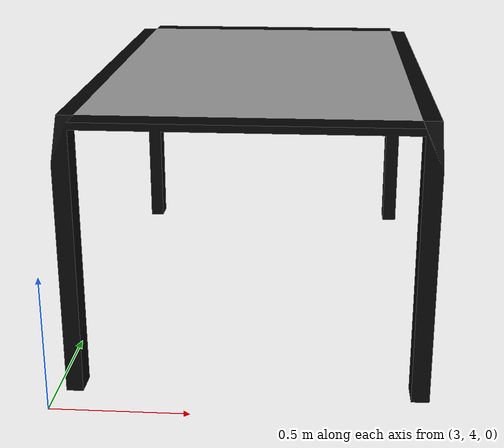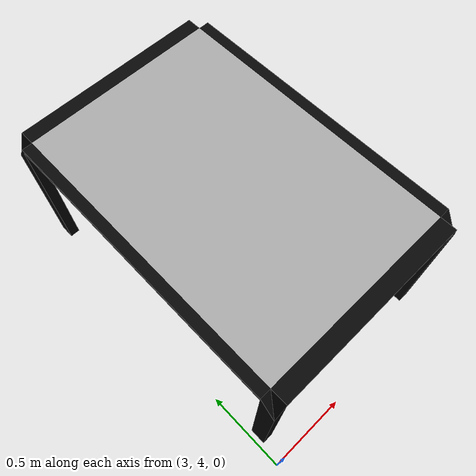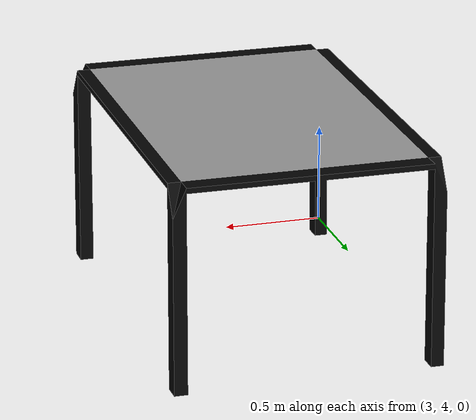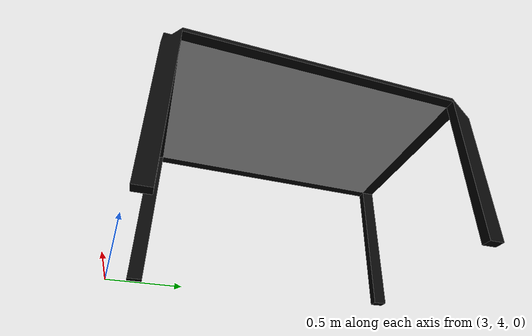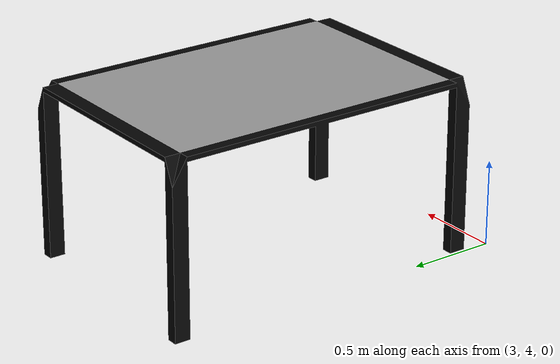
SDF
<?xml version="1.0" ?>
<sdf version="1.4">
	<model name="desk">
		<static>true</static>
		<link name="link">
			<pose>0 0 -0.62 0 0 0</pose>
			<collision name="collision">
				<geometry>
					<mesh>
						<uri>model://desk/mesh/desk.dae</uri>
						<scale>1.0 1.0 1.0</scale>
					</mesh>
				</geometry>
			</collision>
			<visual name="visual">
				<geometry>
					<mesh>
						<uri>model://desk/mesh/desk.dae</uri>
						<scale>1.0 1.0 1.0</scale>
					</mesh>
				</geometry>
			</visual>
		</link>
	</model>
</sdf>
